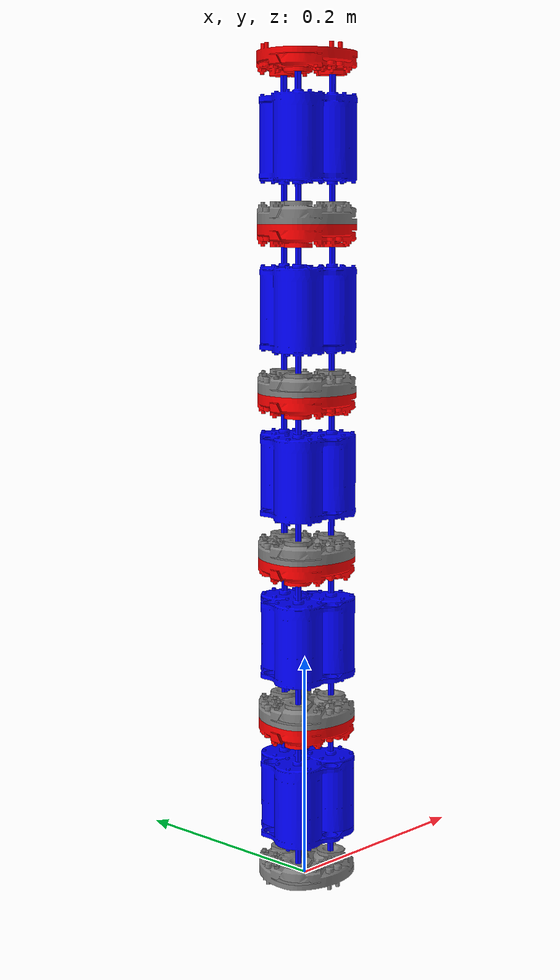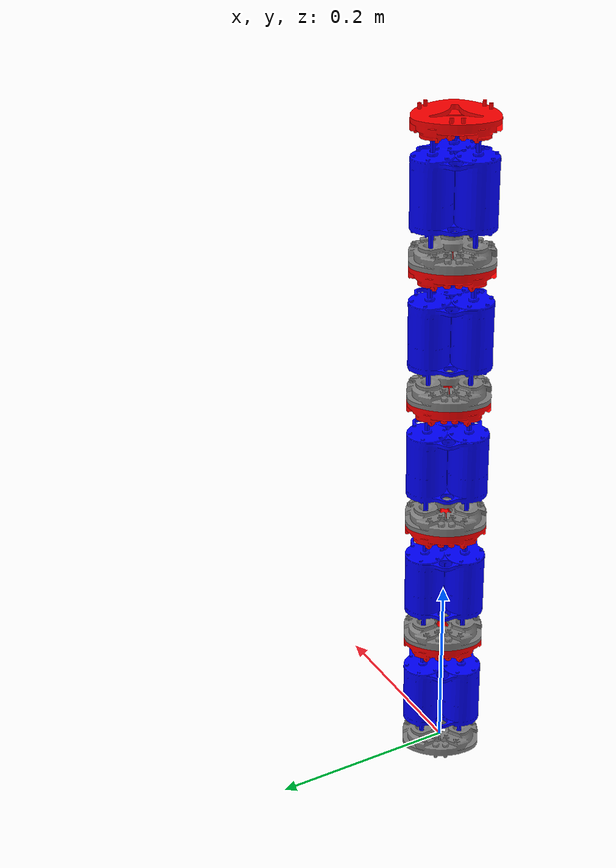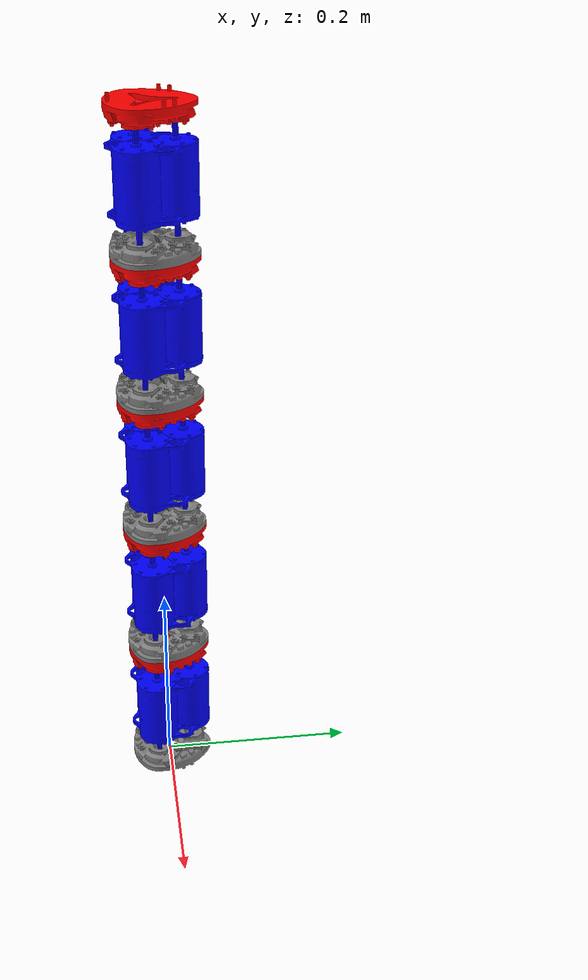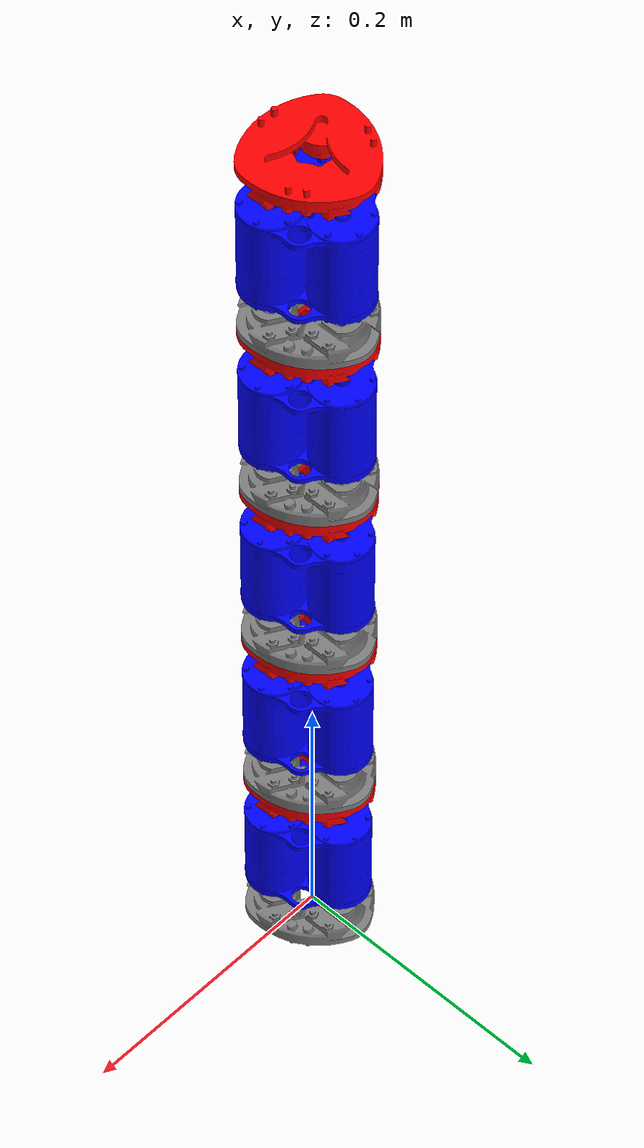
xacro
<?xml version="1.0"?>
<robot xmlns:xacro="http://www.ros.org/wiki/xacro" name="modular_serial_robot">

  <!-- Robot Dimensional Constants -->
  <!-- AUTO-GENERATED from robot_config.physical - DO NOT EDIT MANUALLY -->
  <!-- To update: run scripts/generate_urdf.py -->
  <xacro:property name="base_height" value="0.0115"/>           <!-- 11.5mm -->
  <xacro:property name="segment_offset" value="0.0615"/>        <!-- 61.5mm -->
  <xacro:property name="prismatic_range" value="0.0108"/>       <!-- ±10.8mm -->
  <xacro:property name="revolute_limit" value="0.5236"/>        <!-- ±30° in radians -->
  <xacro:property name="actuator_radius" value="0.02485"/>      <!-- 24.85mm - radius of actuator triangle -->

  <!-- Robot Segment Macro -->
  <xacro:macro name="robot_segment" params="segment_name parent_link *origin">

    <!-- Base Link for this segment -->
    <link name="${segment_name}_base_link">
      <visual>
        <origin xyz="0 0 0" rpy="0 0 0"/>
        <geometry>
          <mesh filename="package://delta_robot_description/meshes/base.stl" scale="0.001 0.001 0.001"/>
        </geometry>
        <material name="gray_${segment_name}">
          <color rgba="0.5 0.5 0.5 1.0"/>
        </material>
      </visual>
      <collision>
        <origin xyz="0 0 0.010" rpy="0 0 0"/>
        <geometry>
          <cylinder radius="0.043" length="0.020"/>
        </geometry>
      </collision>
      <inertial>
        <mass value="1.0"/>
        <origin xyz="0 0 0" rpy="0 0 0"/>
        <inertia ixx="0.010" ixy="0" ixz="0" iyy="0.010" iyz="0" izz="0.010"/>
      </inertial>
    </link>

    <!-- Joint 0: Parent to Segment Base Link -->
    <joint name="${segment_name}_joint0" type="fixed">
      <parent link="${parent_link}"/>
      <child link="${segment_name}_base_link"/>
      <xacro:insert_block name="origin"/>
    </joint>

    <!-- Link 1 - Virtual link for first joint -->
    <link name="${segment_name}_link1">
      <inertial>
        <mass value="0.1"/>
        <origin xyz="0 0 0" rpy="0 0 0"/>
        <inertia ixx="0.001" ixy="0" ixz="0" iyy="0.001" iyz="0" izz="0.001"/>
      </inertial>
    </link>

    <!-- Link 2 - Virtual link for second joint -->
    <link name="${segment_name}_link2">
      <inertial>
        <mass value="0.1"/>
        <origin xyz="0 0 0" rpy="0 0 0"/>
        <inertia ixx="0.001" ixy="0" ixz="0" iyy="0.001" iyz="0" izz="0.001"/>
      </inertial>
    </link>

    <!-- Link 3 - Virtual link for first prismatic joint -->
    <link name="${segment_name}_link3">
      <inertial>
        <mass value="0.1"/>
        <origin xyz="0 0 0" rpy="0 0 0"/>
        <inertia ixx="0.001" ixy="0" ixz="0" iyy="0.001" iyz="0" izz="0.001"/>
      </inertial>
    </link>

    <!-- Middle Link - Using middle.stl mesh (positioned between joints) -->
    <link name="${segment_name}_middle_link">
      <visual>
        <origin xyz="0 0 0" rpy="0 0 0"/>
        <geometry>
          <mesh filename="package://delta_robot_description/meshes/middle.stl" scale="0.001 0.001 0.001"/>
        </geometry>
        <material name="blue_${segment_name}">
          <color rgba="0.0 0.0 1.0 1.0"/>
        </material>
      </visual>
      <collision>
        <origin xyz="0 0 0" rpy="0 0 0"/>  <!-- Centered - no shift needed -->
        <geometry>
          <cylinder radius="0.043" length="0.075"/>  <!-- D86mm = R43mm, H75mm -->
        </geometry>
      </collision>
      <inertial>
        <mass value="0.5"/>
        <origin xyz="0 0 0" rpy="0 0 0"/>
        <inertia ixx="0.005" ixy="0" ixz="0" iyy="0.005" iyz="0" izz="0.005"/>
      </inertial>
    </link>

    <!-- Link 4 - Virtual link for second prismatic joint -->
    <link name="${segment_name}_link4">
      <inertial>
        <mass value="0.1"/>
        <origin xyz="0 0 0" rpy="0 0 0"/>
        <inertia ixx="0.001" ixy="0" ixz="0" iyy="0.001" iyz="0" izz="0.001"/>
      </inertial>
    </link>

    <!-- Link 5 - Virtual link for fourth rotational joint -->
    <link name="${segment_name}_link5">
      <inertial>
        <mass value="0.1"/>
        <origin xyz="0 0 0" rpy="0 0 0"/>
        <inertia ixx="0.001" ixy="0" ixz="0" iyy="0.001" iyz="0" izz="0.001"/>
      </inertial>
    </link>

    <!-- Link 6 - Virtual link for fifth rotational joint -->
    <link name="${segment_name}_link6">
      <inertial>
        <mass value="0.1"/>
        <origin xyz="0 0 0" rpy="0 0 0"/>
        <inertia ixx="0.001" ixy="0" ixz="0" iyy="0.001" iyz="0" izz="0.001"/>
      </inertial>
    </link>

    <!-- End Link - Using base_top.stl mesh -->
    <link name="${segment_name}_end_link">
      <visual>
        <origin xyz="0 0 0" rpy="0 0 0"/>
        <geometry>
          <mesh filename="package://delta_robot_description/meshes/base_top.stl" scale="0.001 0.001 0.001"/>
        </geometry>
        <material name="red_${segment_name}">
          <color rgba="1.0 0.0 0.0 1.0"/>
        </material>
      </visual>
      <collision>
        <origin xyz="0 0 -0.010" rpy="0 0 0"/>  <!-- Move down 50% of height (10mm) so end stays at top -->
        <geometry>
          <cylinder radius="0.043" length="0.020"/>  <!-- D86mm = R43mm, H20mm -->
        </geometry>
      </collision>
      <inertial>
        <mass value="0.3"/>
        <origin xyz="0 0 0" rpy="0 0 0"/>
        <inertia ixx="0.003" ixy="0" ixz="0" iyy="0.003" iyz="0" izz="0.003"/>
      </inertial>
    </link>

    <!-- Joint 1: Base to Link1 at 11.5mm - Revolute around X axis ±30° -->
    <joint name="${segment_name}_joint1" type="revolute">
      <parent link="${segment_name}_base_link"/>
      <child link="${segment_name}_link1"/>
      <origin xyz="0 0 ${base_height}" rpy="0 0 0"/>
      <axis xyz="1 0 0"/>
      <limit lower="-${revolute_limit}" upper="${revolute_limit}" effort="50" velocity="1.0"/>
    </joint>

    <!-- Joint 2: Link1 to Link2 - Revolute around Y axis ±30° -->
    <joint name="${segment_name}_joint2" type="revolute">
      <parent link="${segment_name}_link1"/>
      <child link="${segment_name}_link2"/>
      <origin xyz="0 0 0" rpy="0 0 0"/>
      <axis xyz="0 1 0"/>
      <limit lower="-${revolute_limit}" upper="${revolute_limit}" effort="50" velocity="1.0"/>
    </joint>

    <!-- Joint 3: Link2 to Link3 - First Prismatic ±5.5mm (half range) -->
    <joint name="${segment_name}_joint3" type="prismatic">
      <parent link="${segment_name}_link2"/>
      <child link="${segment_name}_link3"/>
      <origin xyz="0 0 ${segment_offset}" rpy="0 0 0"/>
      <axis xyz="0 0 1"/>
      <limit lower="-${prismatic_range}" upper="${prismatic_range}" effort="30" velocity="0.1"/>
    </joint>

    <!-- Joint 4: Link3 to Middle Link - Fixed connection to middle mesh -->
    <joint name="${segment_name}_joint4" type="fixed">
      <parent link="${segment_name}_link3"/>
      <child link="${segment_name}_middle_link"/>
      <origin xyz="0 0 0" rpy="0 0 0"/>
    </joint>

    <!-- Joint 5: Middle Link to Link4 - Second Prismatic ±5.5mm (mimics joint3) -->
    <joint name="${segment_name}_joint5" type="prismatic">
      <parent link="${segment_name}_middle_link"/>
      <child link="${segment_name}_link4"/>
      <origin xyz="0 0 ${segment_offset}" rpy="0 0 0"/>
      <axis xyz="0 0 1"/>
      <limit lower="-${prismatic_range}" upper="${prismatic_range}" effort="30" velocity="0.1"/>
      <mimic joint="${segment_name}_joint3" multiplier="1.0" offset="0.0"/>
    </joint>

    <!-- Joint 6: Link4 to Link5 - Revolute around Y axis ±30° (mimics joint2) -->
    <joint name="${segment_name}_joint6" type="revolute">
      <parent link="${segment_name}_link4"/>
      <child link="${segment_name}_link5"/>
      <origin xyz="0 0 0" rpy="0 0 0"/>
      <axis xyz="0 1 0"/>
      <limit lower="-${revolute_limit}" upper="${revolute_limit}" effort="40" velocity="1.0"/>
      <mimic joint="${segment_name}_joint2" multiplier="1.0" offset="0.0"/>
    </joint>

    <!-- Joint 7: Link5 to Link6 - Revolute around X axis ±30° (mimics joint1) -->
    <joint name="${segment_name}_joint7" type="revolute">
      <parent link="${segment_name}_link5"/>
      <child link="${segment_name}_link6"/>
      <origin xyz="0 0 0" rpy="0 0 0"/>
      <axis xyz="1 0 0"/>
      <limit lower="-${revolute_limit}" upper="${revolute_limit}" effort="40" velocity="1.0"/>
      <mimic joint="${segment_name}_joint1" multiplier="1.0" offset="0.0"/>
    </joint>

    <!-- Joint 8: Link6 to End Link -->
    <joint name="${segment_name}_joint8" type="fixed">
      <parent link="${segment_name}_link6"/>
      <child link="${segment_name}_end_link"/>
      <origin xyz="0 0 ${base_height}" rpy="0 0 0"/>
    </joint>

  </xacro:macro>

  <!-- Base Link (only for first segment) -->
  <link name="base_link">
    <visual>
      <origin xyz="0 0 0" rpy="0 0 0"/>
      <geometry>
        <mesh filename="package://delta_robot_description/meshes/base.stl" scale="0.001 0.001 0.001"/>
      </geometry>
      <material name="gray">
        <color rgba="0.5 0.5 0.5 1.0"/>
      </material>
    </visual>
    <collision>
      <origin xyz="0 0 0.010" rpy="0 0 0"/>  <!-- Move up 50% of height (10mm) -->
      <geometry>
        <cylinder radius="0.043" length="0.020"/>  <!-- D86mm = R43mm, H20mm -->
      </geometry>
    </collision>
    <inertial>
      <mass value="1.0"/>
      <origin xyz="0 0 0" rpy="0 0 0"/>
      <inertia ixx="0.010" ixy="0" ixz="0" iyy="0.010" iyz="0" izz="0.010"/>
    </inertial>
  </link>

  <!-- Create a 5-segment robot -->
  <!-- AUTO-GENERATED based on NUM_SEGMENTS=5 -->

  <!-- Segment 1: Attached to base_link -->
  <xacro:robot_segment segment_name="seg1" parent_link="base_link">
    <origin xyz="0 0 0" rpy="0 0 0"/>
  </xacro:robot_segment>

  <!-- Segment 2: Attached to seg1_end_link -->
  <xacro:robot_segment segment_name="seg2" parent_link="seg1_end_link">
    <origin xyz="0 0 0" rpy="0 0 0"/>
  </xacro:robot_segment>

  <!-- Segment 3: Attached to seg2_end_link -->
  <xacro:robot_segment segment_name="seg3" parent_link="seg2_end_link">
    <origin xyz="0 0 0" rpy="0 0 0"/>
  </xacro:robot_segment>

  <!-- Segment 4: Attached to seg3_end_link -->
  <xacro:robot_segment segment_name="seg4" parent_link="seg3_end_link">
    <origin xyz="0 0 0" rpy="0 0 0"/>
  </xacro:robot_segment>

  <!-- Segment 5: Attached to seg4_end_link -->
  <xacro:robot_segment segment_name="seg5" parent_link="seg4_end_link">
    <origin xyz="0 0 0" rpy="0 0 0"/>
  </xacro:robot_segment>

</robot>
